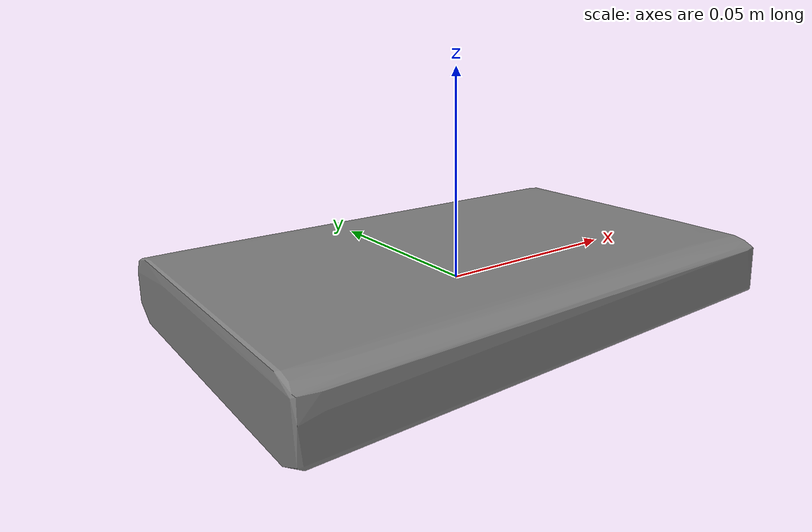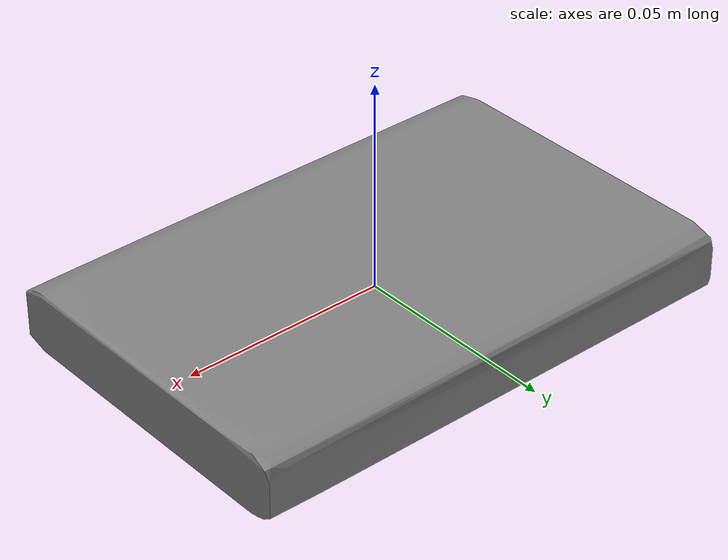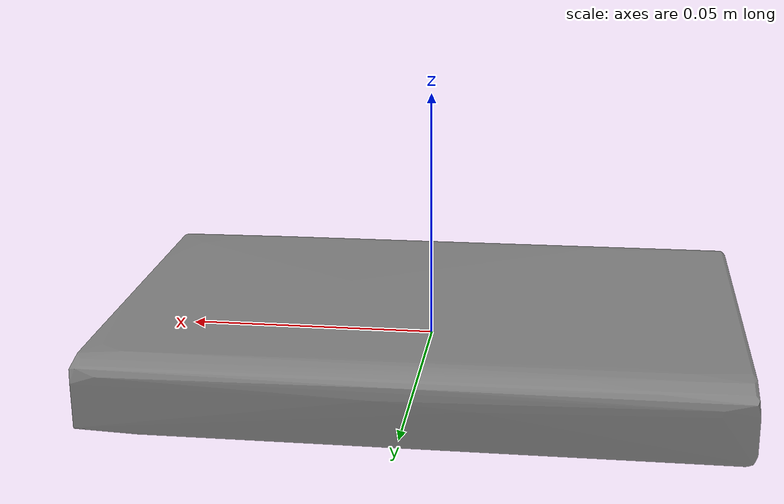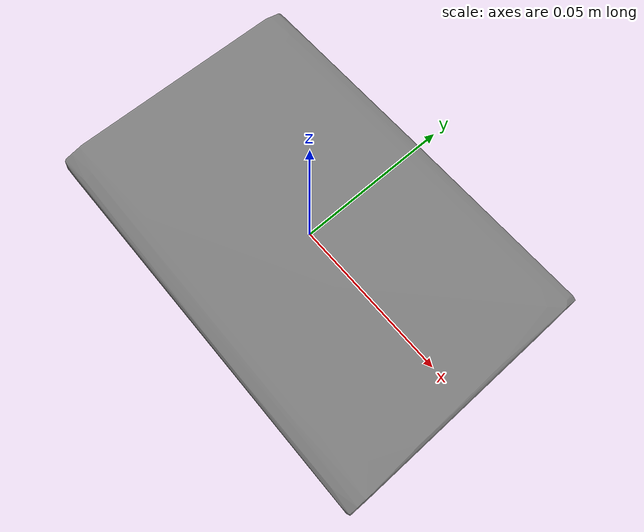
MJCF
<mujoco model="hard_drive_Seagate_1TB_Backup_Plus_portable_drive_Blue_M">
  <default>
    <default class="visual">
      <geom group="2" type="mesh" contype="0" conaffinity="0" />
    </default>
    <default class="collision">
      <geom group="3" type="mesh" />
    </default>
  </default>
  <asset>
    <mesh file="hard_drive_Seagate_1TB_Backup_Plus_portable_drive_Blue_M.stl" />
    <mesh file="hard_drive_Seagate_1TB_Backup_Plus_portable_drive_Blue_M_collision_0.stl" />
  </asset>
  <worldbody>
    <body name="hard_drive_Seagate_1TB_Backup_Plus_portable_drive_Blue_M">
      <geom mesh="hard_drive_Seagate_1TB_Backup_Plus_portable_drive_Blue_M" class="visual" />
      <geom mesh="hard_drive_Seagate_1TB_Backup_Plus_portable_drive_Blue_M_collision_0" class="collision" />
    </body>
  </worldbody>
</mujoco>
